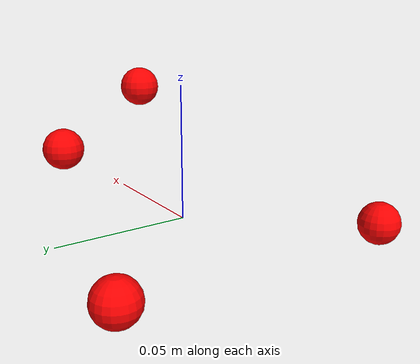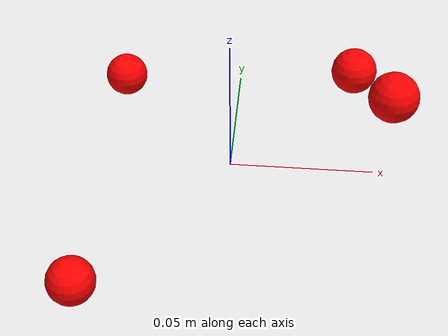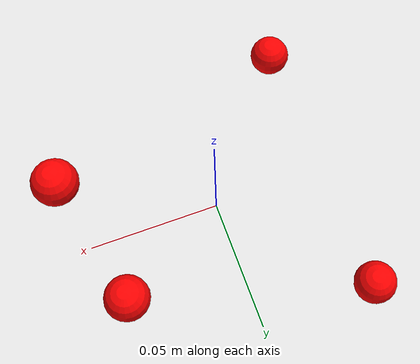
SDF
<?xml version='1.0'?>
<sdf version='1.5'>
  <model name="ir_beacon_test_config">
	<static>true</static>
	<pose>0 0 0 0 0 0</pose>
    <link name='ir_beacon_main'>
	  <pose>0 0 0 0 0 0</pose>
    </link>

	<include>
		<name>ir_beacon_1</name>
		<uri>model://ir_beacon</uri>
		<pose>-0.045 0.049 0.0 0 0 0</pose>
	</include>
	<include>
		<name>ir_beacon_2</name>
		<uri>model://ir_beacon</uri>
		<pose>-0.045 -0.057 0.0 0 0 0</pose>
	</include>
	<include>
		<name>ir_beacon_3</name>
		<uri>model://ir_beacon</uri>
		<pose>0.052 -0.0105 0.042 0 0 0</pose>
	</include>
	<include>
		<name>ir_beacon_4</name>
		<uri>model://ir_beacon</uri>
		<pose>0.042 0.029 0.022 0 0 0</pose>
	</include>

  </model>
</sdf>

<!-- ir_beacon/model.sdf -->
<sdf version='1.5'>
  <model name="ir_beacon">
	<pose>0 0 0 0 0 0</pose>
    <link name='ir_beacon'>
	  <pose>0 0 0 0 0 0</pose>
      <collision name='collision'>
        <geometry>
          <sphere>
            <radius>0.01</radius>
          </sphere>
        </geometry>
      </collision>

      <visual name='beacon'>
		<material>
			<ambient>1 0 0 1</ambient>
			<emissive>1 0 0 1</emissive>
			<diffuse>1 0 0 1</diffuse>
		</material>
	    <geometry>
          	<sphere>
            		<radius>0.008</radius>
          	</sphere>
        </geometry>
      </visual>

	</link>
  </model>
</sdf>
